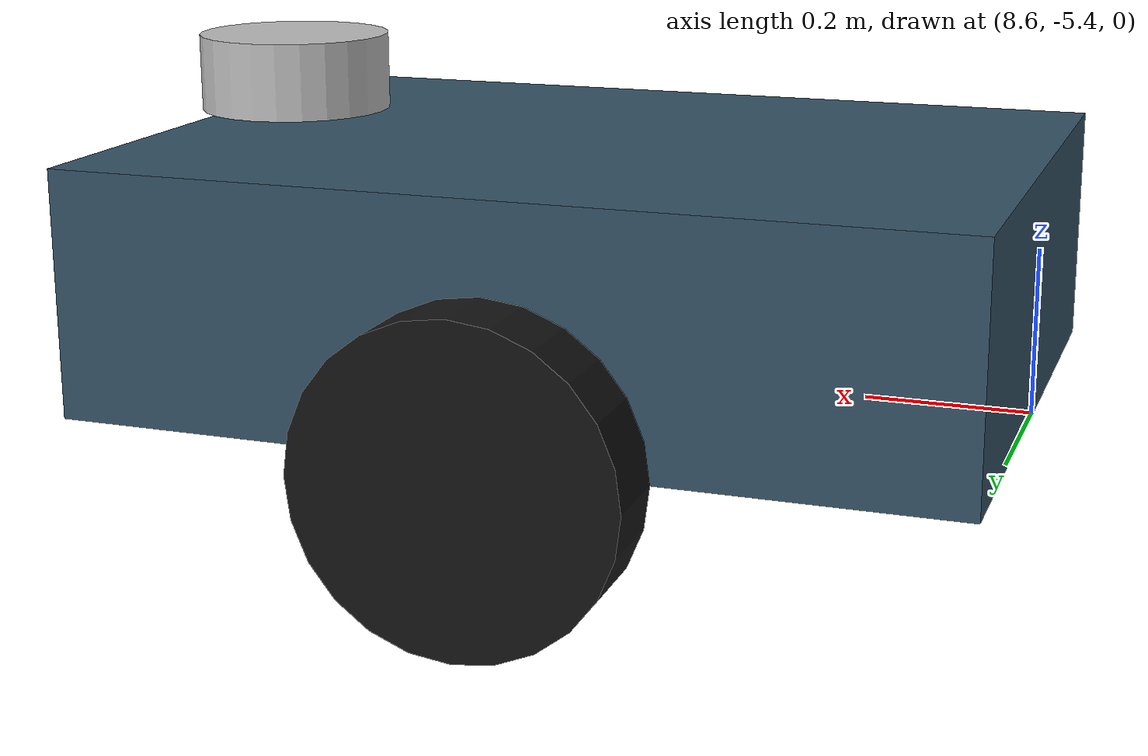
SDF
<?xml version="1.0"?>
<sdf version="1.9">

  <model name="R3">

    <pose>9 -5 0.25 0 0 0</pose>

    <!-- Main chassis -->
    <link name="base_link">

      <inertial>
        <mass>12</mass>
        <inertia>
          <ixx>0.5</ixx>
          <iyy>0.5</iyy>
          <izz>0.5</izz>
        </inertia>
      </inertial>

      <collision name="base_collision">
        <geometry>
          <box>
            <size>0.9 0.65 0.25</size>
          </box>
        </geometry>
      </collision>

      <visual name="base_visual">
        <geometry>
          <box>
            <size>0.9 0.65 0.25</size>
          </box>
        </geometry>

        <material>
          <ambient>0.10 0.16 0.20 1</ambient>
          <diffuse>0.20 0.32 0.40 1</diffuse>
        </material>
      </visual>

    </link>

    <!-- Left wheel -->
    <link name="left_wheel">

      <pose>0 0.38 -0.12 1.5708 0 0</pose>

      <inertial>
        <mass>1</mass>
        <inertia>
          <ixx>0.02</ixx>
          <iyy>0.02</iyy>
          <izz>0.02</izz>
        </inertia>
      </inertial>

      <collision name="collision">
        <geometry>
          <cylinder>
            <radius>0.16</radius>
            <length>0.08</length>
          </cylinder>
        </geometry>
      </collision>

      <visual name="visual">
        <geometry>
          <cylinder>
            <radius>0.16</radius>
            <length>0.08</length>
          </cylinder>
        </geometry>

        <material>
          <ambient>0.03 0.03 0.03 1</ambient>
          <diffuse>0.08 0.08 0.08 1</diffuse>
        </material>
      </visual>

    </link>

    <!-- Right wheel -->
    <link name="right_wheel">

      <pose>0 -0.38 -0.12 1.5708 0 0</pose>

      <inertial>
        <mass>1</mass>
        <inertia>
          <ixx>0.02</ixx>
          <iyy>0.02</iyy>
          <izz>0.02</izz>
        </inertia>
      </inertial>

      <collision name="collision">
        <geometry>
          <cylinder>
            <radius>0.16</radius>
            <length>0.08</length>
          </cylinder>
        </geometry>
      </collision>

      <visual name="visual">
        <geometry>
          <cylinder>
            <radius>0.16</radius>
            <length>0.08</length>
          </cylinder>
        </geometry>

        <material>
          <ambient>0.03 0.03 0.03 1</ambient>
          <diffuse>0.08 0.08 0.08 1</diffuse>
        </material>
      </visual>

    </link>

    <!-- Front sensor housing -->
    <link name="sensor">

      <pose>0.35 0 0.18 0 0 0</pose>

      <visual name="visual">
        <geometry>
          <cylinder>
            <radius>0.10</radius>
            <length>0.08</length>
          </cylinder>
        </geometry>

        <material>
          <ambient>0.65 0.65 0.65 1</ambient>
          <diffuse>0.75 0.75 0.75 1</diffuse>
        </material>
      </visual>

    </link>

    <!-- Differential drive -->
    <plugin
      filename="gz-sim-diff-drive-system"
      name="gz::sim::systems::DiffDrive">

      <left_joint>left_wheel_joint</left_joint>
      <right_joint>right_wheel_joint</right_joint>

      <wheel_separation>0.76</wheel_separation>
      <wheel_radius>0.16</wheel_radius>

      <topic>/R3/cmd_vel</topic>
      <odom_topic>/R3/odom</odom_topic>

      <frame_id>odom</frame_id>
      <child_frame_id>base_link</child_frame_id>

    </plugin>

    <!-- Lidar -->
    <link name="lidar">

      <pose>0 0 0.35 0 0 0</pose>

      <sensor name="lidar_sensor" type="gpu_lidar">

        <topic>/R3/scan</topic>

        <update_rate>10</update_rate>

        <lidar>
          <scan>
            <horizontal>
              <samples>360</samples>
              <resolution>1</resolution>
              <min_angle>-3.14159</min_angle>
              <max_angle>3.14159</max_angle>
            </horizontal>
          </scan>

          <range>
            <min>0.12</min>
            <max>12</max>
            <resolution>0.01</resolution>
          </range>
        </lidar>

      </sensor>

    </link>

    <!-- Wheel joints -->
    <joint name="left_wheel_joint" type="revolute">
      <parent>base_link</parent>
      <child>left_wheel</child>
      <axis>
        <xyz>0 1 0</xyz>
      </axis>
    </joint>

    <joint name="right_wheel_joint" type="revolute">
      <parent>base_link</parent>
      <child>right_wheel</child>
      <axis>
        <xyz>0 1 0</xyz>
      </axis>
    </joint>

  </model>

</sdf>
